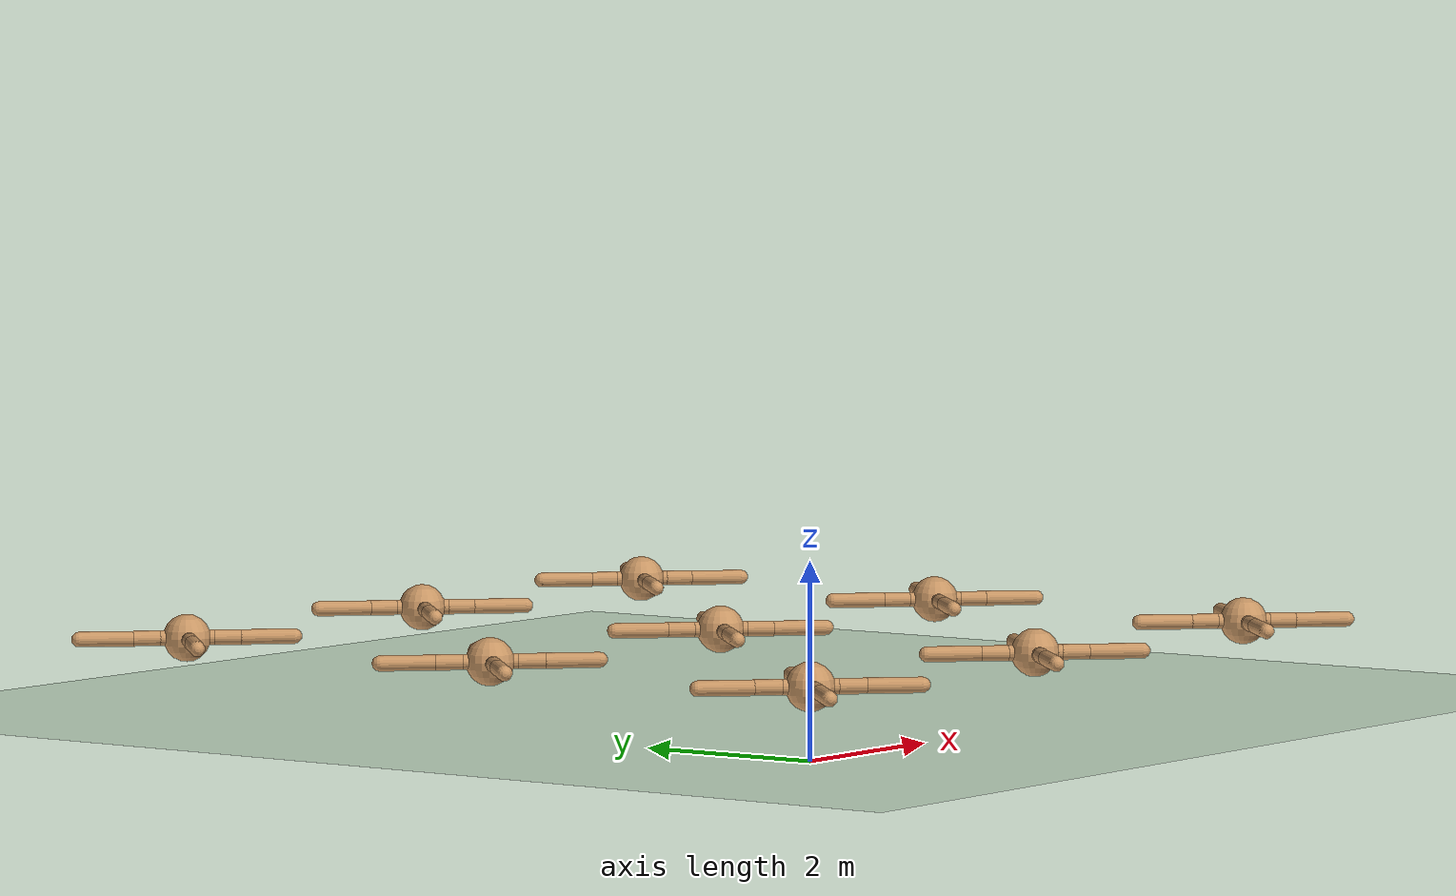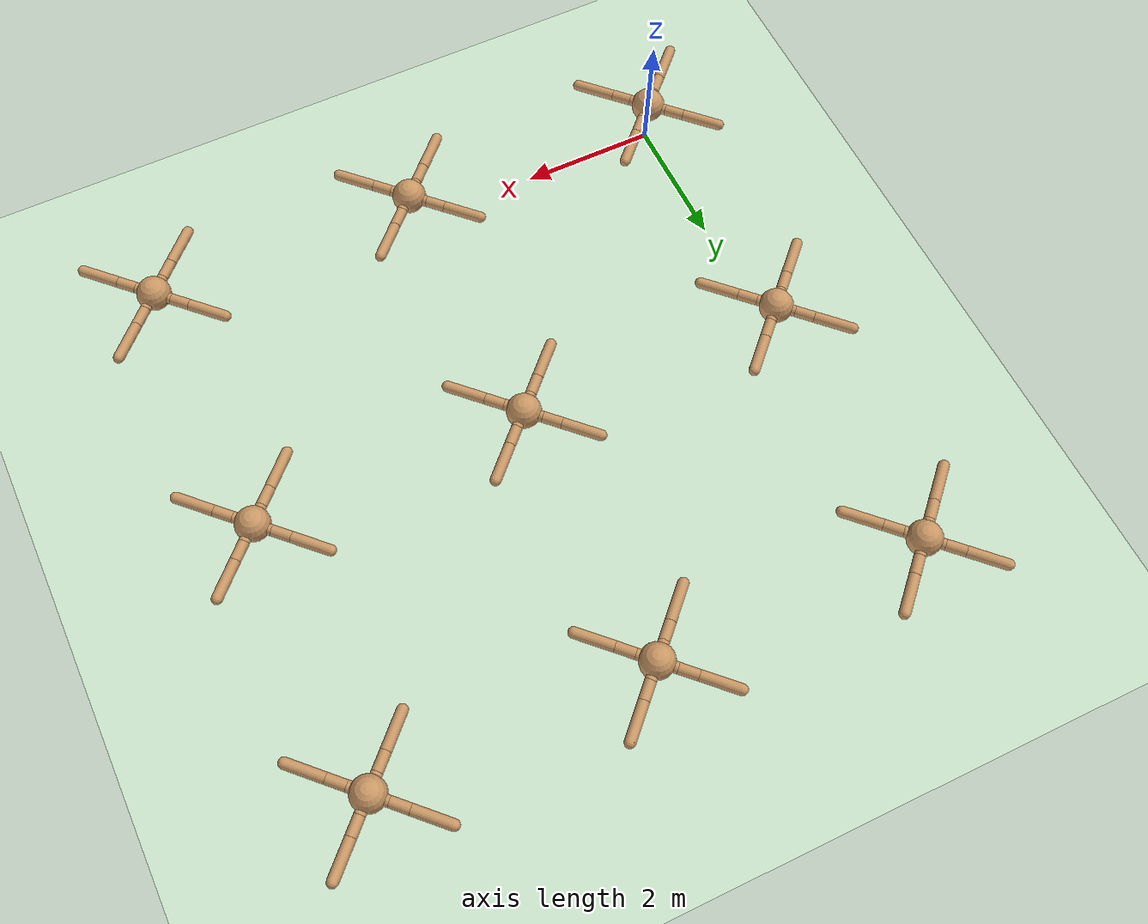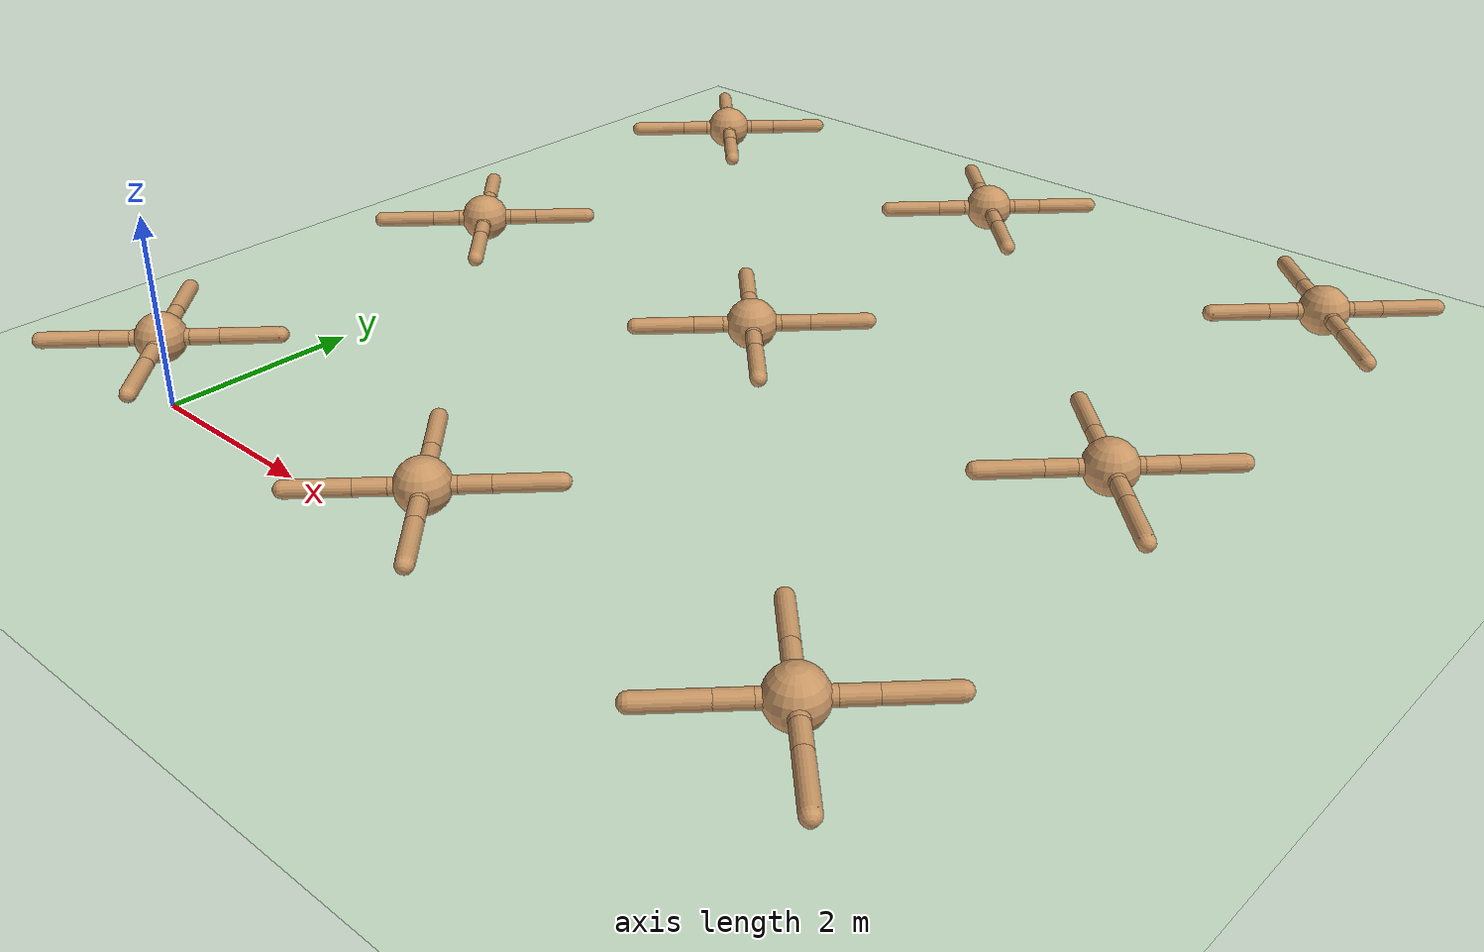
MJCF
<mujoco model="ant">
  <compiler angle="degree" coordinate="local" inertiafromgeom="true"/>
  <option integrator="RK4" timestep="0.01"/>
  <custom>
    <numeric data="0.0 0.0 0.55 1.0 0.0 0.0 0.0 0.0 1.0 0.0 -1.0 0.0 -1.0 0.0 1.0" name="init_qpos"/>
  </custom>
  <default>
    <joint armature="1" damping="1" limited="true"/>
    <geom conaffinity="0" condim="3" density="5.0" friction="1 0.5 0.5" margin="0.01" rgba="0.8 0.6 0.4 1"/>
  </default>
  <asset>
    <texture builtin="gradient" height="100" rgb1="1 1 1" rgb2="0 0 0" type="skybox" width="100"/>
    <texture builtin="flat" height="1278" mark="cross" markrgb="1 1 1" name="texgeom" random="0.01" rgb1="0.8 0.6 0.4" rgb2="0.8 0.6 0.4" type="cube" width="127"/>
    <texture builtin="checker" height="100" name="texplane" rgb1="0 0 0" rgb2="0.8 0.8 0.8" type="2d" width="100"/>
    <material name="MatPlane" reflectance="0.5" shininess="1" specular="1" texrepeat="60 60" texture="texplane"/>
    <material name="geom" texture="texgeom" texuniform="true"/>
  </asset>
  <worldbody>
    <light cutoff="100" diffuse="1 1 1" dir="-0 0 -1.3" directional="true" exponent="1" pos="0 0 1.3" specular=".1 .1 .1"/>
    <geom conaffinity="1" condim="3" material="MatPlane" name="floor" pos="0 0 0" rgba="0.8 0.9 0.8 1" size="40 40 40" type="plane"/>
    <body name="torso" pos="0 0 0.75">
      <camera name="track" mode="trackcom" pos="0 -3 0.3" xyaxes="1 0 0 0 0 1"/>
      <geom name="torso_geom" pos="0 0 0" size="0.25" type="sphere"/>
      <joint armature="0" damping="0" limited="false" margin="0.01" name="root" pos="0 0 0" type="free"/>
      <body name="front_left_leg" pos="0 0 0">
        <geom fromto="0.0 0.0 0.0 0.2 0.2 0.0" name="aux_1_geom" size="0.08" type="capsule"/>
        <body name="aux_1" pos="0.2 0.2 0">
          <joint axis="0 0 1" name="hip_1" pos="0.0 0.0 0.0" range="-30 30" type="hinge"/>
          <geom fromto="0.0 0.0 0.0 0.2 0.2 0.0" name="left_leg_geom" size="0.08" type="capsule"/>
          <body pos="0.2 0.2 0">
            <joint axis="-1 1 0" name="ankle_1" pos="0.0 0.0 0.0" range="30 70" type="hinge"/>
            <geom fromto="0.0 0.0 0.0 0.4 0.4 0.0" name="left_ankle_geom" size="0.08" type="capsule"/>
          </body>
        </body>
      </body>
      <body name="front_right_leg" pos="0 0 0">
        <geom fromto="0.0 0.0 0.0 -0.2 0.2 0.0" name="aux_2_geom" size="0.08" type="capsule"/>
        <body name="aux_2" pos="-0.2 0.2 0">
          <joint axis="0 0 1" name="hip_2" pos="0.0 0.0 0.0" range="-30 30" type="hinge"/>
          <geom fromto="0.0 0.0 0.0 -0.2 0.2 0.0" name="right_leg_geom" size="0.08" type="capsule"/>
          <body pos="-0.2 0.2 0">
            <joint axis="1 1 0" name="ankle_2" pos="0.0 0.0 0.0" range="-70 -30" type="hinge"/>
            <geom fromto="0.0 0.0 0.0 -0.4 0.4 0.0" name="right_ankle_geom" size="0.08" type="capsule"/>
          </body>
        </body>
      </body>
      <body name="back_leg" pos="0 0 0">
        <geom fromto="0.0 0.0 0.0 -0.2 -0.2 0.0" name="aux_3_geom" size="0.08" type="capsule"/>
        <body name="aux_3" pos="-0.2 -0.2 0">
          <joint axis="0 0 1" name="hip_3" pos="0.0 0.0 0.0" range="-30 30" type="hinge"/>
          <geom fromto="0.0 0.0 0.0 -0.2 -0.2 0.0" name="back_leg_geom" size="0.08" type="capsule"/>
          <body pos="-0.2 -0.2 0">
            <joint axis="-1 1 0" name="ankle_3" pos="0.0 0.0 0.0" range="-70 -30" type="hinge"/>
            <geom fromto="0.0 0.0 0.0 -0.4 -0.4 0.0" name="third_ankle_geom" size="0.08" type="capsule"/>
          </body>
        </body>
      </body>
      <body name="right_back_leg" pos="0 0 0">
        <geom fromto="0.0 0.0 0.0 0.2 -0.2 0.0" name="aux_4_geom" size="0.08" type="capsule"/>
        <body name="aux_4" pos="0.2 -0.2 0">
          <joint axis="0 0 1" name="hip_4" pos="0.0 0.0 0.0" range="-30 30" type="hinge"/>
          <geom fromto="0.0 0.0 0.0 0.2 -0.2 0.0" name="rightback_leg_geom" size="0.08" type="capsule"/>
          <body pos="0.2 -0.2 0">
            <joint axis="1 1 0" name="ankle_4" pos="0.0 0.0 0.0" range="30 70" type="hinge"/>
            <geom fromto="0.0 0.0 0.0 0.4 -0.4 0.0" name="fourth_ankle_geom" size="0.08" type="capsule"/>
          </body>
        </body>
      </body>
    </body>

    <body name="torsoA1" pos="0 4 0.75">
      <camera name="trackA1" mode="trackcom" pos="0 -3 0.3" xyaxes="1 0 0 0 0 1"/>
      <geom name="torso_geomA1" pos="0 0 0" size="0.25" type="sphere"/>
      <joint armature="0" damping="0" limited="false" margin="0.01" name="rootA1" pos="0 0 0" type="free"/>
      <body name="front_left_legA1" pos="0 0 0">
        <geom fromto="0.0 0.0 0.0 0.2 0.2 0.0" name="aux_1_geomA1" size="0.08" type="capsule"/>
        <body name="aux_1A1" pos="0.2 0.2 0">
          <joint axis="0 0 1" name="hip_1A1" pos="0.0 0.0 0.0" range="-30 30" type="hinge"/>
          <geom fromto="0.0 0.0 0.0 0.2 0.2 0.0" name="left_leg_geomA1" size="0.08" type="capsule"/>
          <body pos="0.2 0.2 0">
            <joint axis="-1 1 0" name="ankle_1A1" pos="0.0 0.0 0.0" range="30 70" type="hinge"/>
            <geom fromto="0.0 0.0 0.0 0.4 0.4 0.0" name="left_ankle_geomA1" size="0.08" type="capsule"/>
          </body>
        </body>
      </body>
      <body name="front_right_legA1" pos="0 0 0">
        <geom fromto="0.0 0.0 0.0 -0.2 0.2 0.0" name="aux_2_geomA1" size="0.08" type="capsule"/>
        <body name="aux_2A1" pos="-0.2 0.2 0">
          <joint axis="0 0 1" name="hip_2A1" pos="0.0 0.0 0.0" range="-30 30" type="hinge"/>
          <geom fromto="0.0 0.0 0.0 -0.2 0.2 0.0" name="right_leg_geomA1" size="0.08" type="capsule"/>
          <body pos="-0.2 0.2 0">
            <joint axis="1 1 0" name="ankle_2A1" pos="0.0 0.0 0.0" range="-70 -30" type="hinge"/>
            <geom fromto="0.0 0.0 0.0 -0.4 0.4 0.0" name="right_ankle_geomA1" size="0.08" type="capsule"/>
          </body>
        </body>
      </body>
      <body name="back_legA1" pos="0 0 0">
        <geom fromto="0.0 0.0 0.0 -0.2 -0.2 0.0" name="aux_3_geomA1" size="0.08" type="capsule"/>
        <body name="aux_3A1" pos="-0.2 -0.2 0">
          <joint axis="0 0 1" name="hip_3A1" pos="0.0 0.0 0.0" range="-30 30" type="hinge"/>
          <geom fromto="0.0 0.0 0.0 -0.2 -0.2 0.0" name="back_leg_geomA1" size="0.08" type="capsule"/>
          <body pos="-0.2 -0.2 0">
            <joint axis="-1 1 0" name="ankle_3A1" pos="0.0 0.0 0.0" range="-70 -30" type="hinge"/>
            <geom fromto="0.0 0.0 0.0 -0.4 -0.4 0.0" name="third_ankle_geomA1" size="0.08" type="capsule"/>
          </body>
        </body>
      </body>
      <body name="right_back_legA1" pos="0 0 0">
        <geom fromto="0.0 0.0 0.0 0.2 -0.2 0.0" name="aux_4_geomA1" size="0.08" type="capsule"/>
        <body name="aux_4A1" pos="0.2 -0.2 0">
          <joint axis="0 0 1" name="hip_4A1" pos="0.0 0.0 0.0" range="-30 30" type="hinge"/>
          <geom fromto="0.0 0.0 0.0 0.2 -0.2 0.0" name="rightback_leg_geomA1" size="0.08" type="capsule"/>
          <body pos="0.2 -0.2 0">
            <joint axis="1 1 0" name="ankle_4A1" pos="0.0 0.0 0.0" range="30 70" type="hinge"/>
            <geom fromto="0.0 0.0 0.0 0.4 -0.4 0.0" name="fourth_ankle_geomA1" size="0.08" type="capsule"/>
          </body>
        </body>
      </body>
    </body>

    <body name="torsoB1" pos="0 8 0.75">
      <camera name="trackB1" mode="trackcom" pos="0 -3 0.3" xyaxes="1 0 0 0 0 1"/>
      <geom name="torso_geomB1" pos="0 0 0" size="0.25" type="sphere"/>
      <joint armature="0" damping="0" limited="false" margin="0.01" name="rootB1" pos="0 0 0" type="free"/>
      <body name="front_left_legB1" pos="0 0 0">
        <geom fromto="0.0 0.0 0.0 0.2 0.2 0.0" name="aux_1_geomB1" size="0.08" type="capsule"/>
        <body name="aux_1B1" pos="0.2 0.2 0">
          <joint axis="0 0 1" name="hip_1B1" pos="0.0 0.0 0.0" range="-30 30" type="hinge"/>
          <geom fromto="0.0 0.0 0.0 0.2 0.2 0.0" name="left_leg_geomB1" size="0.08" type="capsule"/>
          <body pos="0.2 0.2 0">
            <joint axis="-1 1 0" name="ankle_1B1" pos="0.0 0.0 0.0" range="30 70" type="hinge"/>
            <geom fromto="0.0 0.0 0.0 0.4 0.4 0.0" name="left_ankle_geomB1" size="0.08" type="capsule"/>
          </body>
        </body>
      </body>
      <body name="front_right_legB1" pos="0 0 0">
        <geom fromto="0.0 0.0 0.0 -0.2 0.2 0.0" name="aux_2_geomB1" size="0.08" type="capsule"/>
        <body name="aux_2B1" pos="-0.2 0.2 0">
          <joint axis="0 0 1" name="hip_2B1" pos="0.0 0.0 0.0" range="-30 30" type="hinge"/>
          <geom fromto="0.0 0.0 0.0 -0.2 0.2 0.0" name="right_leg_geomB1" size="0.08" type="capsule"/>
          <body pos="-0.2 0.2 0">
            <joint axis="1 1 0" name="ankle_2B1" pos="0.0 0.0 0.0" range="-70 -30" type="hinge"/>
            <geom fromto="0.0 0.0 0.0 -0.4 0.4 0.0" name="right_ankle_geomB1" size="0.08" type="capsule"/>
          </body>
        </body>
      </body>
      <body name="back_legB1" pos="0 0 0">
        <geom fromto="0.0 0.0 0.0 -0.2 -0.2 0.0" name="aux_3_geomB1" size="0.08" type="capsule"/>
        <body name="aux_3B1" pos="-0.2 -0.2 0">
          <joint axis="0 0 1" name="hip_3B1" pos="0.0 0.0 0.0" range="-30 30" type="hinge"/>
          <geom fromto="0.0 0.0 0.0 -0.2 -0.2 0.0" name="back_leg_geomB1" size="0.08" type="capsule"/>
          <body pos="-0.2 -0.2 0">
            <joint axis="-1 1 0" name="ankle_3B1" pos="0.0 0.0 0.0" range="-70 -30" type="hinge"/>
            <geom fromto="0.0 0.0 0.0 -0.4 -0.4 0.0" name="third_ankle_geomB1" size="0.08" type="capsule"/>
          </body>
        </body>
      </body>
      <body name="right_back_legB1" pos="0 0 0">
        <geom fromto="0.0 0.0 0.0 0.2 -0.2 0.0" name="aux_4_geomB1" size="0.08" type="capsule"/>
        <body name="aux_4B1" pos="0.2 -0.2 0">
          <joint axis="0 0 1" name="hip_4B1" pos="0.0 0.0 0.0" range="-30 30" type="hinge"/>
          <geom fromto="0.0 0.0 0.0 0.2 -0.2 0.0" name="rightback_leg_geomB1" size="0.08" type="capsule"/>
          <body pos="0.2 -0.2 0">
            <joint axis="1 1 0" name="ankle_4B1" pos="0.0 0.0 0.0" range="30 70" type="hinge"/>
            <geom fromto="0.0 0.0 0.0 0.4 -0.4 0.0" name="fourth_ankle_geomB1" size="0.08" type="capsule"/>
          </body>
        </body>
      </body>
    </body>

    <body name="torsoC1" pos="4 0 0.75">
      <camera name="trackC1" mode="trackcom" pos="0 -3 0.3" xyaxes="1 0 0 0 0 1"/>
      <geom name="torso_geomC1" pos="0 0 0" size="0.25" type="sphere"/>
      <joint armature="0" damping="0" limited="false" margin="0.01" name="rootC1" pos="0 0 0" type="free"/>
      <body name="front_left_legC1" pos="0 0 0">
        <geom fromto="0.0 0.0 0.0 0.2 0.2 0.0" name="aux_1_geomC1" size="0.08" type="capsule"/>
        <body name="aux_1C1" pos="0.2 0.2 0">
          <joint axis="0 0 1" name="hip_1C1" pos="0.0 0.0 0.0" range="-30 30" type="hinge"/>
          <geom fromto="0.0 0.0 0.0 0.2 0.2 0.0" name="left_leg_geomC1" size="0.08" type="capsule"/>
          <body pos="0.2 0.2 0">
            <joint axis="-1 1 0" name="ankle_1C1" pos="0.0 0.0 0.0" range="30 70" type="hinge"/>
            <geom fromto="0.0 0.0 0.0 0.4 0.4 0.0" name="left_ankle_geomC1" size="0.08" type="capsule"/>
          </body>
        </body>
      </body>
      <body name="front_right_legC1" pos="0 0 0">
        <geom fromto="0.0 0.0 0.0 -0.2 0.2 0.0" name="aux_2_geomC1" size="0.08" type="capsule"/>
        <body name="aux_2C1" pos="-0.2 0.2 0">
          <joint axis="0 0 1" name="hip_2C1" pos="0.0 0.0 0.0" range="-30 30" type="hinge"/>
          <geom fromto="0.0 0.0 0.0 -0.2 0.2 0.0" name="right_leg_geomC1" size="0.08" type="capsule"/>
          <body pos="-0.2 0.2 0">
            <joint axis="1 1 0" name="ankle_2C1" pos="0.0 0.0 0.0" range="-70 -30" type="hinge"/>
            <geom fromto="0.0 0.0 0.0 -0.4 0.4 0.0" name="right_ankle_geomC1" size="0.08" type="capsule"/>
          </body>
        </body>
      </body>
      <body name="back_legC1" pos="0 0 0">
        <geom fromto="0.0 0.0 0.0 -0.2 -0.2 0.0" name="aux_3_geomC1" size="0.08" type="capsule"/>
        <body name="aux_3C1" pos="-0.2 -0.2 0">
          <joint axis="0 0 1" name="hip_3C1" pos="0.0 0.0 0.0" range="-30 30" type="hinge"/>
          <geom fromto="0.0 0.0 0.0 -0.2 -0.2 0.0" name="back_leg_geomC1" size="0.08" type="capsule"/>
          <body pos="-0.2 -0.2 0">
            <joint axis="-1 1 0" name="ankle_3C1" pos="0.0 0.0 0.0" range="-70 -30" type="hinge"/>
            <geom fromto="0.0 0.0 0.0 -0.4 -0.4 0.0" name="third_ankle_geomC1" size="0.08" type="capsule"/>
          </body>
        </body>
      </body>
      <body name="right_back_legC1" pos="0 0 0">
        <geom fromto="0.0 0.0 0.0 0.2 -0.2 0.0" name="aux_4_geomC1" size="0.08" type="capsule"/>
        <body name="aux_4C1" pos="0.2 -0.2 0">
          <joint axis="0 0 1" name="hip_4C1" pos="0.0 0.0 0.0" range="-30 30" type="hinge"/>
          <geom fromto="0.0 0.0 0.0 0.2 -0.2 0.0" name="rightback_leg_geomC1" size="0.08" type="capsule"/>
          <body pos="0.2 -0.2 0">
            <joint axis="1 1 0" name="ankle_4C1" pos="0.0 0.0 0.0" range="30 70" type="hinge"/>
            <geom fromto="0.0 0.0 0.0 0.4 -0.4 0.0" name="fourth_ankle_geomC1" size="0.08" type="capsule"/>
          </body>
        </body>
      </body>
    </body>

    <body name="torsoD1" pos="4 4 0.75">
      <camera name="trackD1" mode="trackcom" pos="0 -3 0.3" xyaxes="1 0 0 0 0 1"/>
      <geom name="torso_geomD1" pos="0 0 0" size="0.25" type="sphere"/>
      <joint armature="0" damping="0" limited="false" margin="0.01" name="rootD1" pos="0 0 0" type="free"/>
      <body name="front_left_legD1" pos="0 0 0">
        <geom fromto="0.0 0.0 0.0 0.2 0.2 0.0" name="aux_1_geomD1" size="0.08" type="capsule"/>
        <body name="aux_1D1" pos="0.2 0.2 0">
          <joint axis="0 0 1" name="hip_1D1" pos="0.0 0.0 0.0" range="-30 30" type="hinge"/>
          <geom fromto="0.0 0.0 0.0 0.2 0.2 0.0" name="left_leg_geomD1" size="0.08" type="capsule"/>
          <body pos="0.2 0.2 0">
            <joint axis="-1 1 0" name="ankle_1D1" pos="0.0 0.0 0.0" range="30 70" type="hinge"/>
            <geom fromto="0.0 0.0 0.0 0.4 0.4 0.0" name="left_ankle_geomD1" size="0.08" type="capsule"/>
          </body>
        </body>
      </body>
      <body name="front_right_legD1" pos="0 0 0">
        <geom fromto="0.0 0.0 0.0 -0.2 0.2 0.0" name="aux_2_geomD1" size="0.08" type="capsule"/>
        <body name="aux_2D1" pos="-0.2 0.2 0">
          <joint axis="0 0 1" name="hip_2D1" pos="0.0 0.0 0.0" range="-30 30" type="hinge"/>
          <geom fromto="0.0 0.0 0.0 -0.2 0.2 0.0" name="right_leg_geomD1" size="0.08" type="capsule"/>
          <body pos="-0.2 0.2 0">
            <joint axis="1 1 0" name="ankle_2D1" pos="0.0 0.0 0.0" range="-70 -30" type="hinge"/>
            <geom fromto="0.0 0.0 0.0 -0.4 0.4 0.0" name="right_ankle_geomD1" size="0.08" type="capsule"/>
          </body>
        </body>
      </body>
      <body name="back_legD1" pos="0 0 0">
        <geom fromto="0.0 0.0 0.0 -0.2 -0.2 0.0" name="aux_3_geomD1" size="0.08" type="capsule"/>
        <body name="aux_3D1" pos="-0.2 -0.2 0">
          <joint axis="0 0 1" name="hip_3D1" pos="0.0 0.0 0.0" range="-30 30" type="hinge"/>
          <geom fromto="0.0 0.0 0.0 -0.2 -0.2 0.0" name="back_leg_geomD1" size="0.08" type="capsule"/>
          <body pos="-0.2 -0.2 0">
            <joint axis="-1 1 0" name="ankle_3D1" pos="0.0 0.0 0.0" range="-70 -30" type="hinge"/>
            <geom fromto="0.0 0.0 0.0 -0.4 -0.4 0.0" name="third_ankle_geomD1" size="0.08" type="capsule"/>
          </body>
        </body>
      </body>
      <body name="right_back_legD1" pos="0 0 0">
        <geom fromto="0.0 0.0 0.0 0.2 -0.2 0.0" name="aux_4_geomD1" size="0.08" type="capsule"/>
        <body name="aux_4D1" pos="0.2 -0.2 0">
          <joint axis="0 0 1" name="hip_4D1" pos="0.0 0.0 0.0" range="-30 30" type="hinge"/>
          <geom fromto="0.0 0.0 0.0 0.2 -0.2 0.0" name="rightback_leg_geomD1" size="0.08" type="capsule"/>
          <body pos="0.2 -0.2 0">
            <joint axis="1 1 0" name="ankle_4D1" pos="0.0 0.0 0.0" range="30 70" type="hinge"/>
            <geom fromto="0.0 0.0 0.0 0.4 -0.4 0.0" name="fourth_ankle_geomD1" size="0.08" type="capsule"/>
          </body>
        </body>
      </body>
    </body>

    <body name="torsoE1" pos="4 8 0.75">
      <camera name="trackE1" mode="trackcom" pos="0 -3 0.3" xyaxes="1 0 0 0 0 1"/>
      <geom name="torso_geomE1" pos="0 0 0" size="0.25" type="sphere"/>
      <joint armature="0" damping="0" limited="false" margin="0.01" name="rootE1" pos="0 0 0" type="free"/>
      <body name="front_left_legE1" pos="0 0 0">
        <geom fromto="0.0 0.0 0.0 0.2 0.2 0.0" name="aux_1_geomE1" size="0.08" type="capsule"/>
        <body name="aux_1E1" pos="0.2 0.2 0">
          <joint axis="0 0 1" name="hip_1E1" pos="0.0 0.0 0.0" range="-30 30" type="hinge"/>
          <geom fromto="0.0 0.0 0.0 0.2 0.2 0.0" name="left_leg_geomE1" size="0.08" type="capsule"/>
          <body pos="0.2 0.2 0">
            <joint axis="-1 1 0" name="ankle_1E1" pos="0.0 0.0 0.0" range="30 70" type="hinge"/>
            <geom fromto="0.0 0.0 0.0 0.4 0.4 0.0" name="left_ankle_geomE1" size="0.08" type="capsule"/>
          </body>
        </body>
      </body>
      <body name="front_right_legE1" pos="0 0 0">
        <geom fromto="0.0 0.0 0.0 -0.2 0.2 0.0" name="aux_2_geomE1" size="0.08" type="capsule"/>
        <body name="aux_2E1" pos="-0.2 0.2 0">
          <joint axis="0 0 1" name="hip_2E1" pos="0.0 0.0 0.0" range="-30 30" type="hinge"/>
          <geom fromto="0.0 0.0 0.0 -0.2 0.2 0.0" name="right_leg_geomE1" size="0.08" type="capsule"/>
          <body pos="-0.2 0.2 0">
            <joint axis="1 1 0" name="ankle_2E1" pos="0.0 0.0 0.0" range="-70 -30" type="hinge"/>
            <geom fromto="0.0 0.0 0.0 -0.4 0.4 0.0" name="right_ankle_geomE1" size="0.08" type="capsule"/>
          </body>
        </body>
      </body>
      <body name="back_legE1" pos="0 0 0">
        <geom fromto="0.0 0.0 0.0 -0.2 -0.2 0.0" name="aux_3_geomE1" size="0.08" type="capsule"/>
        <body name="aux_3E1" pos="-0.2 -0.2 0">
          <joint axis="0 0 1" name="hip_3E1" pos="0.0 0.0 0.0" range="-30 30" type="hinge"/>
          <geom fromto="0.0 0.0 0.0 -0.2 -0.2 0.0" name="back_leg_geomE1" size="0.08" type="capsule"/>
          <body pos="-0.2 -0.2 0">
            <joint axis="-1 1 0" name="ankle_3E1" pos="0.0 0.0 0.0" range="-70 -30" type="hinge"/>
            <geom fromto="0.0 0.0 0.0 -0.4 -0.4 0.0" name="third_ankle_geomE1" size="0.08" type="capsule"/>
          </body>
        </body>
      </body>
      <body name="right_back_legE1" pos="0 0 0">
        <geom fromto="0.0 0.0 0.0 0.2 -0.2 0.0" name="aux_4_geomE1" size="0.08" type="capsule"/>
        <body name="aux_4E1" pos="0.2 -0.2 0">
          <joint axis="0 0 1" name="hip_4E1" pos="0.0 0.0 0.0" range="-30 30" type="hinge"/>
          <geom fromto="0.0 0.0 0.0 0.2 -0.2 0.0" name="rightback_leg_geomE1" size="0.08" type="capsule"/>
          <body pos="0.2 -0.2 0">
            <joint axis="1 1 0" name="ankle_4E1" pos="0.0 0.0 0.0" range="30 70" type="hinge"/>
            <geom fromto="0.0 0.0 0.0 0.4 -0.4 0.0" name="fourth_ankle_geomE1" size="0.08" type="capsule"/>
          </body>
        </body>
      </body>
    </body>
        <body name="torsoF1" pos="8 4 0.75">
      <camera name="trackF1" mode="trackcom" pos="0 -3 0.3" xyaxes="1 0 0 0 0 1"/>
      <geom name="torso_geomF1" pos="0 0 0" size="0.25" type="sphere"/>
      <joint armature="0" damping="0" limited="false" margin="0.01" name="rootF1" pos="0 0 0" type="free"/>
      <body name="front_left_legF1" pos="0 0 0">
        <geom fromto="0.0 0.0 0.0 0.2 0.2 0.0" name="aux_1_geomF1" size="0.08" type="capsule"/>
        <body name="aux_1F1" pos="0.2 0.2 0">
          <joint axis="0 0 1" name="hip_1F1" pos="0.0 0.0 0.0" range="-30 30" type="hinge"/>
          <geom fromto="0.0 0.0 0.0 0.2 0.2 0.0" name="left_leg_geomF1" size="0.08" type="capsule"/>
          <body pos="0.2 0.2 0">
            <joint axis="-1 1 0" name="ankle_1F1" pos="0.0 0.0 0.0" range="30 70" type="hinge"/>
            <geom fromto="0.0 0.0 0.0 0.4 0.4 0.0" name="left_ankle_geomF1" size="0.08" type="capsule"/>
          </body>
        </body>
      </body>
      <body name="front_right_legF1" pos="0 0 0">
        <geom fromto="0.0 0.0 0.0 -0.2 0.2 0.0" name="aux_2_geomF1" size="0.08" type="capsule"/>
        <body name="aux_2F1" pos="-0.2 0.2 0">
          <joint axis="0 0 1" name="hip_2F1" pos="0.0 0.0 0.0" range="-30 30" type="hinge"/>
          <geom fromto="0.0 0.0 0.0 -0.2 0.2 0.0" name="right_leg_geomF1" size="0.08" type="capsule"/>
          <body pos="-0.2 0.2 0">
            <joint axis="1 1 0" name="ankle_2F1" pos="0.0 0.0 0.0" range="-70 -30" type="hinge"/>
            <geom fromto="0.0 0.0 0.0 -0.4 0.4 0.0" name="right_ankle_geomF1" size="0.08" type="capsule"/>
          </body>
        </body>
      </body>
      <body name="back_legF1" pos="0 0 0">
        <geom fromto="0.0 0.0 0.0 -0.2 -0.2 0.0" name="aux_3_geomF1" size="0.08" type="capsule"/>
        <body name="aux_3F1" pos="-0.2 -0.2 0">
          <joint axis="0 0 1" name="hip_3F1" pos="0.0 0.0 0.0" range="-30 30" type="hinge"/>
          <geom fromto="0.0 0.0 0.0 -0.2 -0.2 0.0" name="back_leg_geomF1" size="0.08" type="capsule"/>
          <body pos="-0.2 -0.2 0">
            <joint axis="-1 1 0" name="ankle_3F1" pos="0.0 0.0 0.0" range="-70 -30" type="hinge"/>
            <geom fromto="0.0 0.0 0.0 -0.4 -0.4 0.0" name="third_ankle_geomF1" size="0.08" type="capsule"/>
          </body>
        </body>
      </body>
      <body name="right_back_legF1" pos="0 0 0">
        <geom fromto="0.0 0.0 0.0 0.2 -0.2 0.0" name="aux_4_geomF1" size="0.08" type="capsule"/>
        <body name="aux_4F1" pos="0.2 -0.2 0">
          <joint axis="0 0 1" name="hip_4F1" pos="0.0 0.0 0.0" range="-30 30" type="hinge"/>
          <geom fromto="0.0 0.0 0.0 0.2 -0.2 0.0" name="rightback_leg_geomF1" size="0.08" type="capsule"/>
          <body pos="0.2 -0.2 0">
            <joint axis="1 1 0" name="ankle_4F1" pos="0.0 0.0 0.0" range="30 70" type="hinge"/>
            <geom fromto="0.0 0.0 0.0 0.4 -0.4 0.0" name="fourth_ankle_geomF1" size="0.08" type="capsule"/>
          </body>
        </body>
      </body>
    </body>

        <body name="torsoG1" pos="8 0 0.75">
      <camera name="trackG1" mode="trackcom" pos="0 -3 0.3" xyaxes="1 0 0 0 0 1"/>
      <geom name="torso_geomG1" pos="0 0 0" size="0.25" type="sphere"/>
      <joint armature="0" damping="0" limited="false" margin="0.01" name="rootG1" pos="0 0 0" type="free"/>
      <body name="front_left_legG1" pos="0 0 0">
        <geom fromto="0.0 0.0 0.0 0.2 0.2 0.0" name="aux_1_geomG1" size="0.08" type="capsule"/>
        <body name="aux_1G1" pos="0.2 0.2 0">
          <joint axis="0 0 1" name="hip_1G1" pos="0.0 0.0 0.0" range="-30 30" type="hinge"/>
          <geom fromto="0.0 0.0 0.0 0.2 0.2 0.0" name="left_leg_geomG1" size="0.08" type="capsule"/>
          <body pos="0.2 0.2 0">
            <joint axis="-1 1 0" name="ankle_1G1" pos="0.0 0.0 0.0" range="30 70" type="hinge"/>
            <geom fromto="0.0 0.0 0.0 0.4 0.4 0.0" name="left_ankle_geomG1" size="0.08" type="capsule"/>
          </body>
        </body>
      </body>
      <body name="front_right_legG1" pos="0 0 0">
        <geom fromto="0.0 0.0 0.0 -0.2 0.2 0.0" name="aux_2_geomG1" size="0.08" type="capsule"/>
        <body name="aux_2G1" pos="-0.2 0.2 0">
          <joint axis="0 0 1" name="hip_2G1" pos="0.0 0.0 0.0" range="-30 30" type="hinge"/>
          <geom fromto="0.0 0.0 0.0 -0.2 0.2 0.0" name="right_leg_geomG1" size="0.08" type="capsule"/>
          <body pos="-0.2 0.2 0">
            <joint axis="1 1 0" name="ankle_2G1" pos="0.0 0.0 0.0" range="-70 -30" type="hinge"/>
            <geom fromto="0.0 0.0 0.0 -0.4 0.4 0.0" name="right_ankle_geomG1" size="0.08" type="capsule"/>
          </body>
        </body>
      </body>
      <body name="back_legG1" pos="0 0 0">
        <geom fromto="0.0 0.0 0.0 -0.2 -0.2 0.0" name="aux_3_geomG1" size="0.08" type="capsule"/>
        <body name="aux_3G1" pos="-0.2 -0.2 0">
          <joint axis="0 0 1" name="hip_3G1" pos="0.0 0.0 0.0" range="-30 30" type="hinge"/>
          <geom fromto="0.0 0.0 0.0 -0.2 -0.2 0.0" name="back_leg_geomG1" size="0.08" type="capsule"/>
          <body pos="-0.2 -0.2 0">
            <joint axis="-1 1 0" name="ankle_3G1" pos="0.0 0.0 0.0" range="-70 -30" type="hinge"/>
            <geom fromto="0.0 0.0 0.0 -0.4 -0.4 0.0" name="third_ankle_geomG1" size="0.08" type="capsule"/>
          </body>
        </body>
      </body>
      <body name="right_back_legG1" pos="0 0 0">
        <geom fromto="0.0 0.0 0.0 0.2 -0.2 0.0" name="aux_4_geomG1" size="0.08" type="capsule"/>
        <body name="aux_4G1" pos="0.2 -0.2 0">
          <joint axis="0 0 1" name="hip_4G1" pos="0.0 0.0 0.0" range="-30 30" type="hinge"/>
          <geom fromto="0.0 0.0 0.0 0.2 -0.2 0.0" name="rightback_leg_geomG1" size="0.08" type="capsule"/>
          <body pos="0.2 -0.2 0">
            <joint axis="1 1 0" name="ankle_4G1" pos="0.0 0.0 0.0" range="30 70" type="hinge"/>
            <geom fromto="0.0 0.0 0.0 0.4 -0.4 0.0" name="fourth_ankle_geomG1" size="0.08" type="capsule"/>
          </body>
        </body>
      </body>
    </body>
        <body name="torsoH1" pos="8 8 0.75">
      <camera name="trackH1" mode="trackcom" pos="0 -3 0.3" xyaxes="1 0 0 0 0 1"/>
      <geom name="torso_geomH1" pos="0 0 0" size="0.25" type="sphere"/>
      <joint armature="0" damping="0" limited="false" margin="0.01" name="rootH1" pos="0 0 0" type="free"/>
      <body name="front_left_legH1" pos="0 0 0">
        <geom fromto="0.0 0.0 0.0 0.2 0.2 0.0" name="aux_1_geomH1" size="0.08" type="capsule"/>
        <body name="aux_1H1" pos="0.2 0.2 0">
          <joint axis="0 0 1" name="hip_1H1" pos="0.0 0.0 0.0" range="-30 30" type="hinge"/>
          <geom fromto="0.0 0.0 0.0 0.2 0.2 0.0" name="left_leg_geomH1" size="0.08" type="capsule"/>
          <body pos="0.2 0.2 0">
            <joint axis="-1 1 0" name="ankle_1H1" pos="0.0 0.0 0.0" range="30 70" type="hinge"/>
            <geom fromto="0.0 0.0 0.0 0.4 0.4 0.0" name="left_ankle_geomH1" size="0.08" type="capsule"/>
          </body>
        </body>
      </body>
      <body name="front_right_legH1" pos="0 0 0">
        <geom fromto="0.0 0.0 0.0 -0.2 0.2 0.0" name="aux_2_geomH1" size="0.08" type="capsule"/>
        <body name="aux_2H1" pos="-0.2 0.2 0">
          <joint axis="0 0 1" name="hip_2H1" pos="0.0 0.0 0.0" range="-30 30" type="hinge"/>
          <geom fromto="0.0 0.0 0.0 -0.2 0.2 0.0" name="right_leg_geomH1" size="0.08" type="capsule"/>
          <body pos="-0.2 0.2 0">
            <joint axis="1 1 0" name="ankle_2H1" pos="0.0 0.0 0.0" range="-70 -30" type="hinge"/>
            <geom fromto="0.0 0.0 0.0 -0.4 0.4 0.0" name="right_ankle_geomH1" size="0.08" type="capsule"/>
          </body>
        </body>
      </body>
      <body name="back_legH1" pos="0 0 0">
        <geom fromto="0.0 0.0 0.0 -0.2 -0.2 0.0" name="aux_3_geomH1" size="0.08" type="capsule"/>
        <body name="aux_3H1" pos="-0.2 -0.2 0">
          <joint axis="0 0 1" name="hip_3H1" pos="0.0 0.0 0.0" range="-30 30" type="hinge"/>
          <geom fromto="0.0 0.0 0.0 -0.2 -0.2 0.0" name="back_leg_geomH1" size="0.08" type="capsule"/>
          <body pos="-0.2 -0.2 0">
            <joint axis="-1 1 0" name="ankle_3H1" pos="0.0 0.0 0.0" range="-70 -30" type="hinge"/>
            <geom fromto="0.0 0.0 0.0 -0.4 -0.4 0.0" name="third_ankle_geomH1" size="0.08" type="capsule"/>
          </body>
        </body>
      </body>
      <body name="right_back_legH1" pos="0 0 0">
        <geom fromto="0.0 0.0 0.0 0.2 -0.2 0.0" name="aux_4_geomH1" size="0.08" type="capsule"/>
        <body name="aux_4H1" pos="0.2 -0.2 0">
          <joint axis="0 0 1" name="hip_4H1" pos="0.0 0.0 0.0" range="-30 30" type="hinge"/>
          <geom fromto="0.0 0.0 0.0 0.2 -0.2 0.0" name="rightback_leg_geomH1" size="0.08" type="capsule"/>
          <body pos="0.2 -0.2 0">
            <joint axis="1 1 0" name="ankle_4H1" pos="0.0 0.0 0.0" range="30 70" type="hinge"/>
            <geom fromto="0.0 0.0 0.0 0.4 -0.4 0.0" name="fourth_ankle_geomH1" size="0.08" type="capsule"/>
          </body>
        </body>
      </body>
    </body>
  </worldbody>
  <actuator>
    <motor ctrllimited="true" ctrlrange="-1.0 1.0" joint="hip_4" gear="150"/>
    <motor ctrllimited="true" ctrlrange="-1.0 1.0" joint="ankle_4" gear="150"/>
    <motor ctrllimited="true" ctrlrange="-1.0 1.0" joint="hip_1" gear="150"/>
    <motor ctrllimited="true" ctrlrange="-1.0 1.0" joint="ankle_1" gear="150"/>
    <motor ctrllimited="true" ctrlrange="-1.0 1.0" joint="hip_2" gear="150"/>
    <motor ctrllimited="true" ctrlrange="-1.0 1.0" joint="ankle_2" gear="150"/>
    <motor ctrllimited="true" ctrlrange="-1.0 1.0" joint="hip_3" gear="150"/>
    <motor ctrllimited="true" ctrlrange="-1.0 1.0" joint="ankle_3" gear="150"/>

    <motor ctrllimited="true" ctrlrange="-1.0 1.0" joint="hip_4B1" gear="150"/>
    <motor ctrllimited="true" ctrlrange="-1.0 1.0" joint="ankle_4B1" gear="150"/>
    <motor ctrllimited="true" ctrlrange="-1.0 1.0" joint="hip_1B1" gear="150"/>
    <motor ctrllimited="true" ctrlrange="-1.0 1.0" joint="ankle_1B1" gear="150"/>
    <motor ctrllimited="true" ctrlrange="-1.0 1.0" joint="hip_2B1" gear="150"/>
    <motor ctrllimited="true" ctrlrange="-1.0 1.0" joint="ankle_2B1" gear="150"/>
    <motor ctrllimited="true" ctrlrange="-1.0 1.0" joint="hip_3B1" gear="150"/>
    <motor ctrllimited="true" ctrlrange="-1.0 1.0" joint="ankle_3B1" gear="150"/>

        <motor ctrllimited="true" ctrlrange="-1.0 1.0" joint="hip_4C1" gear="150"/>
    <motor ctrllimited="true" ctrlrange="-1.0 1.0" joint="ankle_4C1" gear="150"/>
    <motor ctrllimited="true" ctrlrange="-1.0 1.0" joint="hip_1C1" gear="150"/>
    <motor ctrllimited="true" ctrlrange="-1.0 1.0" joint="ankle_1C1" gear="150"/>
    <motor ctrllimited="true" ctrlrange="-1.0 1.0" joint="hip_2C1" gear="150"/>
    <motor ctrllimited="true" ctrlrange="-1.0 1.0" joint="ankle_2C1" gear="150"/>
    <motor ctrllimited="true" ctrlrange="-1.0 1.0" joint="hip_3C1" gear="150"/>
    <motor ctrllimited="true" ctrlrange="-1.0 1.0" joint="ankle_3C1" gear="150"/>

    <motor ctrllimited="true" ctrlrange="-1.0 1.0" joint="hip_4D1" gear="150"/>
    <motor ctrllimited="true" ctrlrange="-1.0 1.0" joint="ankle_4D1" gear="150"/>
    <motor ctrllimited="true" ctrlrange="-1.0 1.0" joint="hip_1D1" gear="150"/>
    <motor ctrllimited="true" ctrlrange="-1.0 1.0" joint="ankle_1D1" gear="150"/>
    <motor ctrllimited="true" ctrlrange="-1.0 1.0" joint="hip_2D1" gear="150"/>
    <motor ctrllimited="true" ctrlrange="-1.0 1.0" joint="ankle_2D1" gear="150"/>
    <motor ctrllimited="true" ctrlrange="-1.0 1.0" joint="hip_3D1" gear="150"/>
    <motor ctrllimited="true" ctrlrange="-1.0 1.0" joint="ankle_3D1" gear="150"/>

    <motor ctrllimited="true" ctrlrange="-1.0 1.0" joint="hip_4E1" gear="150"/>
    <motor ctrllimited="true" ctrlrange="-1.0 1.0" joint="ankle_4E1" gear="150"/>
    <motor ctrllimited="true" ctrlrange="-1.0 1.0" joint="hip_1E1" gear="150"/>
    <motor ctrllimited="true" ctrlrange="-1.0 1.0" joint="ankle_1E1" gear="150"/>
    <motor ctrllimited="true" ctrlrange="-1.0 1.0" joint="hip_2E1" gear="150"/>
    <motor ctrllimited="true" ctrlrange="-1.0 1.0" joint="ankle_2E1" gear="150"/>
    <motor ctrllimited="true" ctrlrange="-1.0 1.0" joint="hip_3E1" gear="150"/>
    <motor ctrllimited="true" ctrlrange="-1.0 1.0" joint="ankle_3E1" gear="150"/>

        <motor ctrllimited="true" ctrlrange="-1.0 1.0" joint="hip_4F1" gear="150"/>
    <motor ctrllimited="true" ctrlrange="-1.0 1.0" joint="ankle_4F1" gear="150"/>
    <motor ctrllimited="true" ctrlrange="-1.0 1.0" joint="hip_1F1" gear="150"/>
    <motor ctrllimited="true" ctrlrange="-1.0 1.0" joint="ankle_1F1" gear="150"/>
    <motor ctrllimited="true" ctrlrange="-1.0 1.0" joint="hip_2F1" gear="150"/>
    <motor ctrllimited="true" ctrlrange="-1.0 1.0" joint="ankle_2F1" gear="150"/>
    <motor ctrllimited="true" ctrlrange="-1.0 1.0" joint="hip_3F1" gear="150"/>
    <motor ctrllimited="true" ctrlrange="-1.0 1.0" joint="ankle_3F1" gear="150"/>
        <motor ctrllimited="true" ctrlrange="-1.0 1.0" joint="hip_4G1" gear="150"/>
    <motor ctrllimited="true" ctrlrange="-1.0 1.0" joint="ankle_4G1" gear="150"/>
    <motor ctrllimited="true" ctrlrange="-1.0 1.0" joint="hip_1G1" gear="150"/>
    <motor ctrllimited="true" ctrlrange="-1.0 1.0" joint="ankle_1G1" gear="150"/>
    <motor ctrllimited="true" ctrlrange="-1.0 1.0" joint="hip_2G1" gear="150"/>
    <motor ctrllimited="true" ctrlrange="-1.0 1.0" joint="ankle_2G1" gear="150"/>
    <motor ctrllimited="true" ctrlrange="-1.0 1.0" joint="hip_3G1" gear="150"/>
    <motor ctrllimited="true" ctrlrange="-1.0 1.0" joint="ankle_3G1" gear="150"/>
        <motor ctrllimited="true" ctrlrange="-1.0 1.0" joint="hip_4H1" gear="150"/>
    <motor ctrllimited="true" ctrlrange="-1.0 1.0" joint="ankle_4H1" gear="150"/>
    <motor ctrllimited="true" ctrlrange="-1.0 1.0" joint="hip_1H1" gear="150"/>
    <motor ctrllimited="true" ctrlrange="-1.0 1.0" joint="ankle_1H1" gear="150"/>
    <motor ctrllimited="true" ctrlrange="-1.0 1.0" joint="hip_2H1" gear="150"/>
    <motor ctrllimited="true" ctrlrange="-1.0 1.0" joint="ankle_2H1" gear="150"/>
    <motor ctrllimited="true" ctrlrange="-1.0 1.0" joint="hip_3H1" gear="150"/>
    <motor ctrllimited="true" ctrlrange="-1.0 1.0" joint="ankle_3H1" gear="150"/>

  </actuator>
</mujoco>
